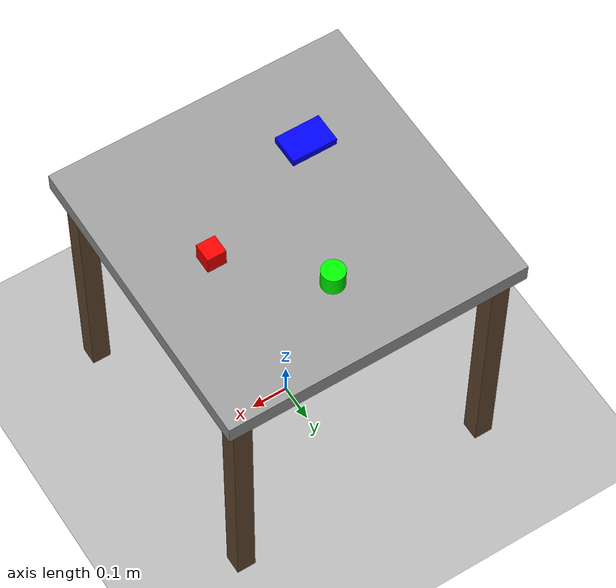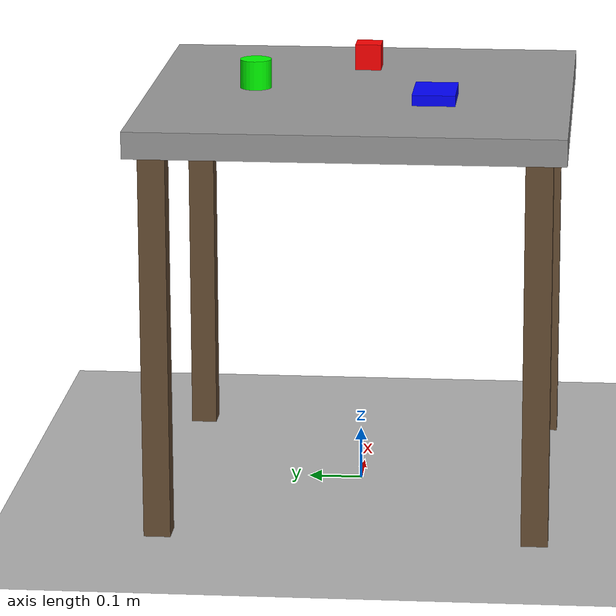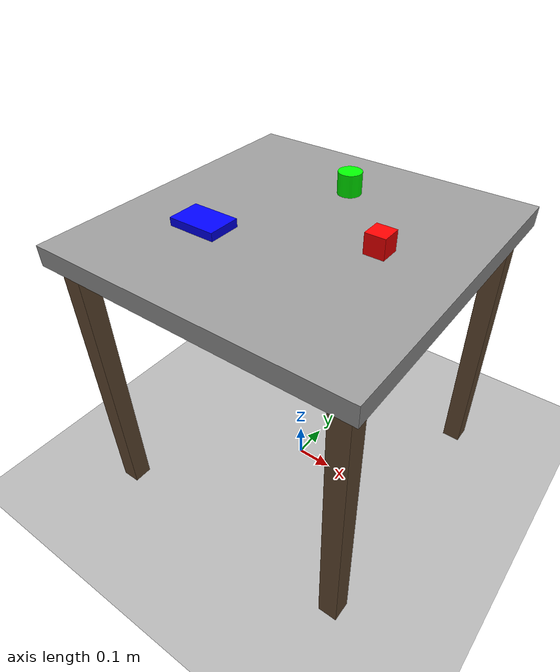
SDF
<sdf version="1.8">
 <world name="ur5_mesa_objetos">
  <gravity>0 0 -9.81</gravity>
  <light type="directional" name="sun">
   <pose>0 0 10 0 0 0</pose>
   <diffuse>0.8 0.8 0.8 1</diffuse>
   <specular>0.2 0.2 0.2 1</specular>
   <attenuation>
    <range>1000</range>
    <constant>0.9</constant>
    <linear>0.01</linear>
    <quadratic>0.001</quadratic>
   </attenuation>
   <direction>-0.5 0.1 -0.9</direction>
  </light>
  <plugin name="gz::sim::systems::Physics" filename="gz-sim-physics-system">
   <engine><type>bullet-featherstone</type></engine>
  </plugin>
  <plugin name="gz::sim::systems::Sensors" filename="gz-sim-sensors-system">
   <render_engine>ogre2</render_engine>
  </plugin>
  <plugin name="gz::sim::systems::SceneBroadcaster" filename="gz-sim-scene-broadcaster-system"/>
  <model name="ground_plane">
   <static>true</static>
   <link name="link">
    <collision name="collision">
     <geometry><plane><normal>0 0 1</normal><size>5 5</size></plane></geometry>
    </collision>
    <visual name="visual">
     <geometry><plane><normal>0 0 1</normal><size>5 5</size></plane></geometry>
     <material><ambient>0.7 0.7 0.7 1</ambient><diffuse>0.7 0.7 0.7 1</diffuse></material>
    </visual>
   </link>
  </model>
  <model name="mesa_tablero">
   <static>true</static>
   <pose>0 0 0.75 0 0 0</pose>
   <link name="link">
    <collision name="collision"><geometry><box><size>0.8 0.8 0.05</size></box></geometry></collision>
    <visual name="visual">
     <geometry><box><size>0.8 0.8 0.05</size></box></geometry>
     <material><ambient>0.6 0.6 0.6 1</ambient><diffuse>0.6 0.6 0.6 1</diffuse></material>
    </visual>
   </link>
  </model>
  <model name="mesa_pata1">
   <static>true</static>
   <pose>0.35 0.35 0.375 0 0 0</pose>
   <link name="link">
    <collision name="collision"><geometry><box><size>0.05 0.05 0.75</size></box></geometry></collision>
    <visual name="visual">
     <geometry><box><size>0.05 0.05 0.75</size></box></geometry>
     <material><ambient>0.4 0.3 0.2 1</ambient><diffuse>0.4 0.3 0.2 1</diffuse></material>
    </visual>
   </link>
  </model>
  <model name="mesa_pata2">
   <static>true</static>
   <pose>0.35 -0.35 0.375 0 0 0</pose>
   <link name="link">
    <collision name="collision"><geometry><box><size>0.05 0.05 0.75</size></box></geometry></collision>
    <visual name="visual">
     <geometry><box><size>0.05 0.05 0.75</size></box></geometry>
     <material><ambient>0.4 0.3 0.2 1</ambient><diffuse>0.4 0.3 0.2 1</diffuse></material>
    </visual>
   </link>
  </model>
  <model name="mesa_pata3">
   <static>true</static>
   <pose>-0.35 0.35 0.375 0 0 0</pose>
   <link name="link">
    <collision name="collision"><geometry><box><size>0.05 0.05 0.75</size></box></geometry></collision>
    <visual name="visual">
     <geometry><box><size>0.05 0.05 0.75</size></box></geometry>
     <material><ambient>0.4 0.3 0.2 1</ambient><diffuse>0.4 0.3 0.2 1</diffuse></material>
    </visual>
   </link>
  </model>
  <model name="mesa_pata4">
   <static>true</static>
   <pose>-0.35 -0.35 0.375 0 0 0</pose>
   <link name="link">
    <collision name="collision"><geometry><box><size>0.05 0.05 0.75</size></box></geometry></collision>
    <visual name="visual">
     <geometry><box><size>0.05 0.05 0.75</size></box></geometry>
     <material><ambient>0.4 0.3 0.2 1</ambient><diffuse>0.4 0.3 0.2 1</diffuse></material>
    </visual>
   </link>
  </model>
  <model name="cubo_rojo">
   <pose>0.20 0.00 0.80 0 0 0</pose>
   <link name="link">
    <collision name="collision"><geometry><box><size>0.05 0.05 0.05</size></box></geometry></collision>
    <visual name="visual">
     <geometry><box><size>0.05 0.05 0.05</size></box></geometry>
     <material><ambient>1 0 0 1</ambient><diffuse>1 0 0 1</diffuse></material>
    </visual>
   </link>
  </model>
  <model name="cilindro_verde">
   <pose>0.00 0.20 0.80 0 0 0</pose>
   <link name="link">
    <collision name="collision">
     <geometry><cylinder><radius>0.03</radius><length>0.06</length></cylinder></geometry>
    </collision>
    <visual name="visual">
     <geometry><cylinder><radius>0.03</radius><length>0.06</length></cylinder></geometry>
     <material><ambient>0 1 0 1</ambient><diffuse>0 1 0 1</diffuse></material>
    </visual>
   </link>
  </model>
  <model name="caja_azul">
   <pose>-0.15 -0.15 0.80 0 0 0</pose>
   <link name="link">
    <collision name="collision"><geometry><box><size>0.12 0.08 0.02</size></box></geometry></collision>
    <visual name="visual">
     <geometry><box><size>0.12 0.08 0.02</size></box></geometry>
     <material><ambient>0 0 1 1</ambient><diffuse>0 0 1 1</diffuse></material>
    </visual>
   </link>
  </model>
  <model name="camera_overhead">
   <pose>0 0 1.2 0 -1.57 0</pose>
   <static>true</static>
   <link name="link">
    <sensor name="camera_overhead_sensor" type="camera">
     <update_rate>30</update_rate>
     <camera>
      <horizontal_fov>1.047</horizontal_fov>
      <image><width>640</width><height>480</height><format>R8G8B8</format></image>
      <clip><near>0.1</near><far>5.0</far></clip>
     </camera>
     <always_on>true</always_on>
     <visualize>false</visualize>
     <topic>/camera_overhead/image</topic>
    </sensor>
   </link>
  </model>
  <model name="camera_lateral">
   <pose>0.7 0 0.4 0 0 3.14159</pose>
   <static>true</static>
   <link name="link">
    <sensor name="camera_lateral_sensor" type="camera">
     <update_rate>30</update_rate>
     <camera>
      <horizontal_fov>1.047</horizontal_fov>
      <image><width>640</width><height>480</height><format>R8G8B8</format></image>
      <clip><near>0.1</near><far>5.0</far></clip>
     </camera>
     <always_on>true</always_on>
     <visualize>false</visualize>
     <topic>/camera/color/image_raw</topic>
    </sensor>
   </link>
  </model>
 </world>
</sdf>
